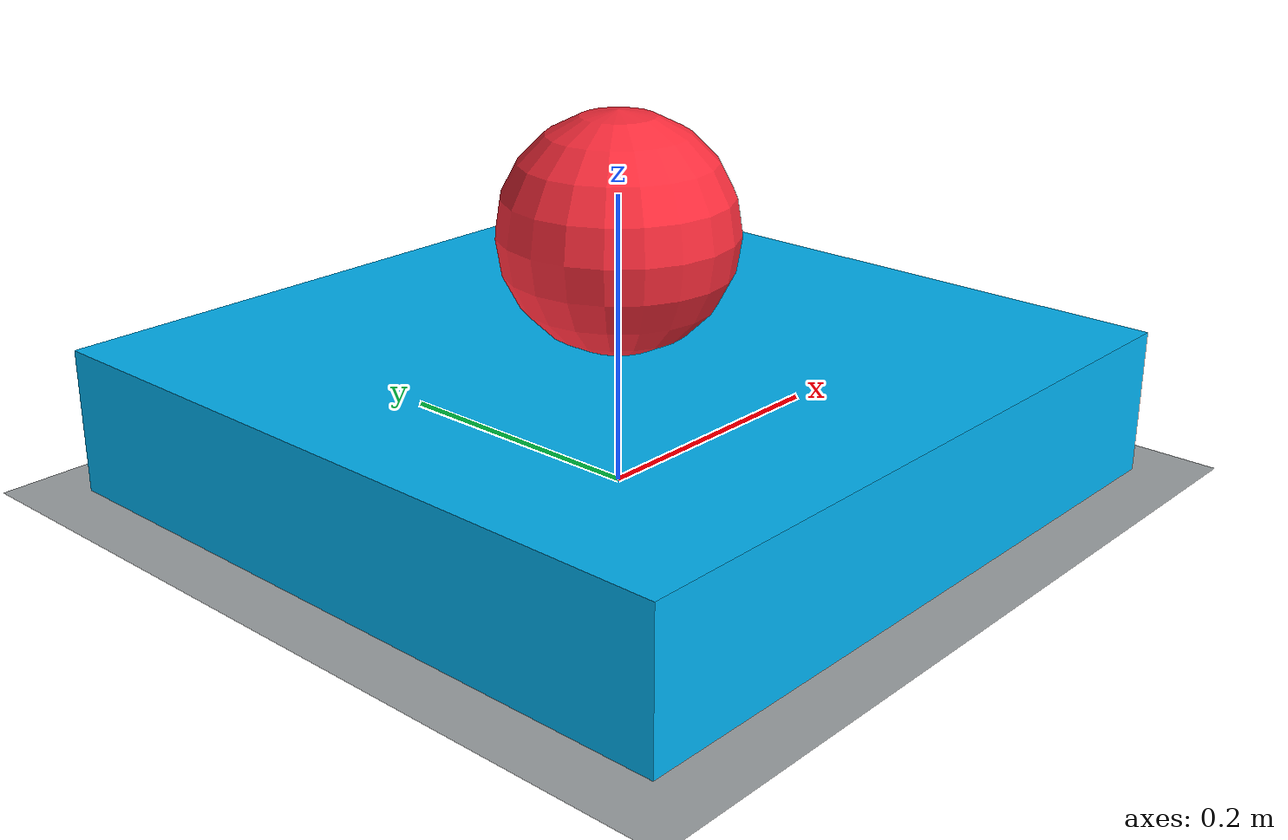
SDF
<?xml version="1.0"?>
<sdf version="1.9">
  <world name="minimal_contact_validation_world">
    <physics name="1ms" type="ignored">
      <max_step_size>0.001</max_step_size>
      <real_time_factor>1.0</real_time_factor>
      <real_time_update_rate>1000</real_time_update_rate>
    </physics>

    <plugin filename="gz-sim-physics-system" name="gz::sim::systems::Physics"/>
    <plugin filename="gz-sim-user-commands-system" name="gz::sim::systems::UserCommands"/>
    <plugin filename="gz-sim-scene-broadcaster-system" name="gz::sim::systems::SceneBroadcaster"/>
    <plugin filename="gz-sim-contact-system" name="gz::sim::systems::Contact"/>

    <gravity>0 0 -9.81</gravity>

    <scene>
      <ambient>0.45 0.45 0.45 1</ambient>
      <background>0.72 0.74 0.76 1</background>
      <shadows>true</shadows>
    </scene>

    <model name="ground_plane">
      <static>true</static>
      <link name="link">
        <collision name="collision">
          <geometry>
            <plane>
              <normal>0 0 1</normal>
              <size>10 10</size>
            </plane>
          </geometry>
        </collision>
        <visual name="visual">
          <geometry>
            <plane>
              <normal>0 0 1</normal>
              <size>10 10</size>
            </plane>
          </geometry>
          <material>
            <ambient>0.48 0.50 0.51 1</ambient>
            <diffuse>0.62 0.64 0.65 1</diffuse>
          </material>
        </visual>
      </link>
    </model>

    <light name="key_light" type="directional">
      <pose>0 0 4 0 0 0</pose>
      <cast_shadows>true</cast_shadows>
      <intensity>1.0</intensity>
      <direction>-0.4 0.2 -0.9</direction>
      <diffuse>0.90 0.92 0.95 1</diffuse>
      <specular>0.25 0.25 0.25 1</specular>
    </light>

    <model name="contact_validation_pad">
      <static>true</static>
      <pose>0 0 0.05 0 0 0</pose>
      <link name="pad_link">
        <collision name="contact_validation_pad_collision">
          <geometry>
            <box>
              <size>0.5 0.5 0.1</size>
            </box>
          </geometry>
          <surface>
            <contact>
              <ode>
                <kp>200000</kp>
                <kd>20</kd>
              </ode>
            </contact>
            <friction>
              <ode>
                <mu>0.8</mu>
                <mu2>0.8</mu2>
              </ode>
            </friction>
          </surface>
        </collision>

        <visual name="contact_validation_pad_visual">
          <geometry>
            <box>
              <size>0.5 0.5 0.1</size>
            </box>
          </geometry>
          <material>
            <ambient>0.00 0.45 0.62 1</ambient>
            <diffuse>0.00 0.70 0.95 1</diffuse>
            <specular>0.15 0.15 0.15 1</specular>
          </material>
        </visual>

        <sensor name="contact_validation_sensor" type="contact">
          <always_on>true</always_on>
          <update_rate>100</update_rate>
          <topic>/gazebo/contacts/validation</topic>
          <contact>
            <collision>contact_validation_pad_collision</collision>
          </contact>
        </sensor>
      </link>
    </model>

    <model name="contact_probe">
      <static>false</static>
      <pose>0 0 0.175 0 0 0</pose>
      <link name="contact_probe_link">
        <gravity>true</gravity>
        <inertial>
          <mass>0.1</mass>
          <inertia>
            <ixx>0.000256</ixx>
            <ixy>0</ixy>
            <ixz>0</ixz>
            <iyy>0.000256</iyy>
            <iyz>0</iyz>
            <izz>0.000256</izz>
          </inertia>
        </inertial>

        <collision name="contact_probe_collision">
          <geometry>
            <sphere>
              <radius>0.08</radius>
            </sphere>
          </geometry>
          <surface>
            <contact>
              <ode>
                <kp>200000</kp>
                <kd>20</kd>
              </ode>
            </contact>
            <friction>
              <ode>
                <mu>0.6</mu>
                <mu2>0.6</mu2>
              </ode>
            </friction>
          </surface>
        </collision>

        <visual name="contact_probe_visual">
          <geometry>
            <sphere>
              <radius>0.08</radius>
            </sphere>
          </geometry>
          <material>
            <ambient>0.92 0.12 0.18 1</ambient>
            <diffuse>1.00 0.18 0.24 1</diffuse>
            <specular>0.25 0.25 0.25 1</specular>
          </material>
        </visual>
      </link>
    </model>
  </world>
</sdf>
